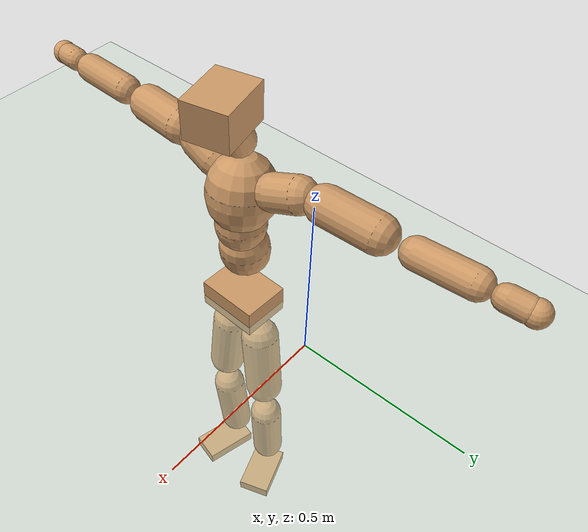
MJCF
<mujoco model="humanoid">
  <compiler coordinate="local" angle="radian"/>
  <default>
    <joint damping="0.0" armature="0.01" stiffness="0.0" limited="true"/>
    <geom conaffinity="1" condim="3" contype="7" margin="0.001" rgba="0.8 0.6 .4 1"/>
  </default>
  <asset>
    <texture type="skybox" builtin="gradient" rgb1=".4 .5 .6" rgb2="0 0 0" width="100" height="100"/>
    <texture builtin="flat" height="1278" mark="cross" markrgb="1 1 1" name="texgeom" random="0.01" rgb1="0.8 0.6 0.4" rgb2="0.8 0.6 0.4" type="cube" width="127"/>
    <texture builtin="checker" height="100" name="texplane" rgb1="0 0 0" rgb2="0.8 0.8 0.8" type="2d" width="100"/>
    <material name="MatPlane" reflectance="0.5" shininess="1" specular="1" texrepeat="60 60" texture="texplane"/>
    <material name="geom" texture="texgeom" texuniform="true"/>
  </asset>
  <worldbody>
    <light cutoff="100" diffuse="1 1 1" dir="-0 0 -1.3" directional="true" exponent="1" pos="0 0 1.3" specular=".1 .1 .1"/>
    <geom conaffinity="1" condim="3" name="floor" pos="0 0 0" rgba="0.8 0.9 0.8 1" size="100 100 .2" type="plane" material="MatPlane"/>
    <body name="Pelvis" pos="-0.007 -0.2418 0.016">
      <freejoint name="Pelvis"/>
      <geom type="box" contype="1" conaffinity="1" density="500" pos="-0.0114 0.0004 -0.0079" size="0.0689 0.0899 0.0419" quat="0.9998 0.0000 0.0000 -0.0179" name="Pelvis"/>
      <body name="L_Hip" pos="-0.0219 0.0478 -0.0777">
        <joint name="L_Hip_x" type="hinge" pos="0 0 0" axis="1 0 0" stiffness="800" damping="80" armature="0.02" range="-180.0000 180.0000"/>
        <joint name="L_Hip_y" type="hinge" pos="0 0 0" axis="0 1 0" stiffness="800" damping="80" armature="0.02" range="-180.0000 180.0000"/>
        <joint name="L_Hip_z" type="hinge" pos="0 0 0" axis="0 0 1" stiffness="800" damping="80" armature="0.02" range="-180.0000 180.0000"/>
        <geom type="capsule" contype="1" conaffinity="1" density="500" fromto="0.0032 0.0085 -0.0731 0.0128 0.0342 -0.2925" size="0.0559" name="L_Hip"/>
        <body name="L_Knee" pos="0.016 0.0427 -0.3657">
          <joint name="L_Knee_x" type="hinge" pos="0 0 0" axis="1 0 0" stiffness="800" damping="80" armature="0.02" range="-180.0000 180.0000"/>
          <joint name="L_Knee_y" type="hinge" pos="0 0 0" axis="0 1 0" stiffness="800" damping="80" armature="0.02" range="-180.0000 180.0000"/>
          <joint name="L_Knee_z" type="hinge" pos="0 0 0" axis="0 0 1" stiffness="800" damping="80" armature="0.02" range="-180.0000 180.0000"/>
          <geom type="capsule" contype="1" conaffinity="1" density="500" fromto="-0.0063 -0.0024 -0.0774 -0.0254 -0.0094 -0.3094" size="0.0495" name="L_Knee"/>
          <body name="L_Ankle" pos="-0.0317 -0.0118 -0.3868">
            <joint name="L_Ankle_x" type="hinge" pos="0 0 0" axis="1 0 0" stiffness="800" damping="80" armature="0.02" range="-180.0000 180.0000"/>
            <joint name="L_Ankle_y" type="hinge" pos="0 0 0" axis="0 1 0" stiffness="800" damping="80" armature="0.02" range="-180.0000 180.0000"/>
            <joint name="L_Ankle_z" type="hinge" pos="0 0 0" axis="0 0 1" stiffness="800" damping="80" armature="0.02" range="-180.0000 180.0000"/>
            <geom type="box" contype="1" conaffinity="1" density="500" pos="0.0568 0.0204 -0.0282" size="0.0825 0.0497 0.0192" quat="0.9852 0.0000 0.0000 0.1711" name="L_Ankle"/>
            <body name="L_Toe" pos="0.1137 0.0407 -0.0563">
              <joint name="L_Toe_x" type="hinge" pos="0 0 0" axis="1 0 0" stiffness="500" damping="50" armature="0.02" range="-180.0000 180.0000"/>
              <joint name="L_Toe_y" type="hinge" pos="0 0 0" axis="0 1 0" stiffness="500" damping="50" armature="0.02" range="-180.0000 180.0000"/>
              <joint name="L_Toe_z" type="hinge" pos="0 0 0" axis="0 0 1" stiffness="500" damping="50" armature="0.02" range="-180.0000 180.0000"/>
              <geom type="box" contype="1" conaffinity="1" density="500" pos="0.0000 0.0000 0.0286" size="0.001 0.0025 0.001" quat="0.9844 0.0000 0.0000 0.1760" name="L_Toe"/>
            </body>
          </body>
        </body>
      </body>
      <body name="R_Hip" pos="-0.0183 -0.0491 -0.0856">
        <joint name="R_Hip_x" type="hinge" pos="0 0 0" axis="1 0 0" stiffness="800" damping="80" armature="0.02" range="-180.0000 180.0000"/>
        <joint name="R_Hip_y" type="hinge" pos="0 0 0" axis="0 1 0" stiffness="800" damping="80" armature="0.02" range="-180.0000 180.0000"/>
        <joint name="R_Hip_z" type="hinge" pos="0 0 0" axis="0 0 1" stiffness="800" damping="80" armature="0.02" range="-180.0000 180.0000"/>
        <geom type="capsule" contype="1" conaffinity="1" density="500" fromto="0.0005 -0.0079 -0.0718 0.0020 -0.0316 -0.2872" size="0.055" name="R_Hip"/>
        <body name="R_Knee" pos="0.0025 -0.0395 -0.359">
          <joint name="R_Knee_x" type="hinge" pos="0 0 0" axis="1 0 0" stiffness="800" damping="80" armature="0.02" range="-180.0000 180.0000"/>
          <joint name="R_Knee_y" type="hinge" pos="0 0 0" axis="0 1 0" stiffness="800" damping="80" armature="0.02" range="-180.0000 180.0000"/>
          <joint name="R_Knee_z" type="hinge" pos="0 0 0" axis="0 0 1" stiffness="800" damping="80" armature="0.02" range="-180.0000 180.0000"/>
          <geom type="capsule" contype="1" conaffinity="1" density="500" fromto="-0.0059 0.0034 -0.0759 -0.0237 0.0138 -0.3035" size="0.0499" name="R_Knee"/>
          <body name="R_Ankle" pos="-0.0296 0.0172 -0.3794">
            <joint name="R_Ankle_x" type="hinge" pos="0 0 0" axis="1 0 0" stiffness="800" damping="80" armature="0.02" range="-180.0000 180.0000"/>
            <joint name="R_Ankle_y" type="hinge" pos="0 0 0" axis="0 1 0" stiffness="800" damping="80" armature="0.02" range="-180.0000 180.0000"/>
            <joint name="R_Ankle_z" type="hinge" pos="0 0 0" axis="0 0 1" stiffness="800" damping="80" armature="0.02" range="-180.0000 180.0000"/>
            <geom type="box" contype="1" conaffinity="1" density="500" pos="0.0612 -0.0150 -0.0282" size="0.0852 0.0471 0.0196" quat="0.9928 0.0000 0.0000 -0.1200" name="R_Ankle"/>
            <body name="R_Toe" pos="0.1225 -0.0301 -0.0564">
              <joint name="R_Toe_x" type="hinge" pos="0 0 0" axis="1 0 0" stiffness="500" damping="50" armature="0.02" range="-180.0000 180.0000"/>
              <joint name="R_Toe_y" type="hinge" pos="0 0 0" axis="0 1 0" stiffness="500" damping="50" armature="0.02" range="-180.0000 180.0000"/>
              <joint name="R_Toe_z" type="hinge" pos="0 0 0" axis="0 0 1" stiffness="500" damping="50" armature="0.02" range="-180.0000 180.0000"/>
              <geom type="box" contype="1" conaffinity="1" density="500" pos="0.0000 0.0000 0.0299" size="0.0009 0.0023 0.0011" quat="0.9939 0.0000 0.0000 -0.1106" name="R_Toe"/>
            </body>
          </body>
        </body>
      </body>
      <body name="Torso" pos="-0.0283 0.0038 0.116">
        <joint name="Torso_x" type="hinge" pos="0 0 0" axis="1 0 0" stiffness="1000" damping="100" armature="0.02" range="-180.0000 180.0000"/>
        <joint name="Torso_y" type="hinge" pos="0 0 0" axis="0 1 0" stiffness="1000" damping="100" armature="0.02" range="-180.0000 180.0000"/>
        <joint name="Torso_z" type="hinge" pos="0 0 0" axis="0 0 1" stiffness="1000" damping="100" armature="0.02" range="-180.0000 180.0000"/>
        <geom type="capsule" contype="1" conaffinity="1" density="500" fromto="0.0167 0.0036 0.0867 0.0111 0.0024 0.0578" size="0.069" name="Torso"/>
        <body name="Spine" pos="0.0278 0.006 0.1444">
          <joint name="Spine_x" type="hinge" pos="0 0 0" axis="1 0 0" stiffness="1000" damping="100" armature="0.02" range="-180.0000 180.0000"/>
          <joint name="Spine_y" type="hinge" pos="0 0 0" axis="0 1 0" stiffness="1000" damping="100" armature="0.02" range="-180.0000 180.0000"/>
          <joint name="Spine_z" type="hinge" pos="0 0 0" axis="0 0 1" stiffness="1000" damping="100" armature="0.02" range="-180.0000 180.0000"/>
          <geom type="capsule" contype="1" conaffinity="1" density="500" fromto="0.0012 -0.0001 0.0350 0.0008 -0.0000 0.0233" size="0.0691" name="Spine"/>
          <body name="Chest" pos="0.002 -0.0001 0.0583">
            <joint name="Chest_x" type="hinge" pos="0 0 0" axis="1 0 0" stiffness="1000" damping="100" armature="0.02" range="-180.0000 180.0000"/>
            <joint name="Chest_y" type="hinge" pos="0 0 0" axis="0 1 0" stiffness="1000" damping="100" armature="0.02" range="-180.0000 180.0000"/>
            <joint name="Chest_z" type="hinge" pos="0 0 0" axis="0 0 1" stiffness="1000" damping="100" armature="0.02" range="-180.0000 180.0000"/>
            <geom type="capsule" contype="1" conaffinity="1" density="500" fromto="-0.0123 -0.0051 0.0813 -0.0082 -0.0034 0.0542" size="0.0922" name="Chest"/>
            <body name="Neck" pos="-0.0242 -0.0147 0.1989">
              <joint name="Neck_x" type="hinge" pos="0 0 0" axis="1 0 0" stiffness="500" damping="50" armature="0.02" range="-180.0000 180.0000"/>
              <joint name="Neck_y" type="hinge" pos="0 0 0" axis="0 1 0" stiffness="500" damping="50" armature="0.02" range="-180.0000 180.0000"/>
              <joint name="Neck_z" type="hinge" pos="0 0 0" axis="0 0 1" stiffness="500" damping="50" armature="0.02" range="-180.0000 180.0000"/>
              <geom type="capsule" contype="1" conaffinity="1" density="500" fromto="0.0097 0.0019 0.0188 0.0390 0.0077 0.0750" size="0.0429" name="Neck"/>
              <body name="Head" pos="0.0487 0.0096 0.0938">
                <joint name="Head_x" type="hinge" pos="0 0 0" axis="1 0 0" stiffness="500" damping="50" armature="0.02" range="-180.0000 180.0000"/>
                <joint name="Head_y" type="hinge" pos="0 0 0" axis="0 1 0" stiffness="500" damping="50" armature="0.02" range="-180.0000 180.0000"/>
                <joint name="Head_z" type="hinge" pos="0 0 0" axis="0 0 1" stiffness="500" damping="50" armature="0.02" range="-180.0000 180.0000"/>
                <geom type="box" contype="1" conaffinity="1" density="500" pos="0.0254 0.0058 0.0479" size="0.0762 0.0607 0.0514" quat="0.9937 0.0000 0.0000 0.1122" name="Head"/>
              </body>
            </body>
            <body name="L_Thorax" pos="-0.0154 0.0672 0.1051">
              <joint name="L_Thorax_x" type="hinge" pos="0 0 0" axis="1 0 0" stiffness="500" damping="50" armature="0.02" range="-180.0000 180.0000"/>
              <joint name="L_Thorax_y" type="hinge" pos="0 0 0" axis="0 1 0" stiffness="500" damping="50" armature="0.02" range="-180.0000 180.0000"/>
              <joint name="L_Thorax_z" type="hinge" pos="0 0 0" axis="0 0 1" stiffness="500" damping="50" armature="0.02" range="-180.0000 180.0000"/>
              <geom type="capsule" contype="1" conaffinity="1" density="500" fromto="-0.0032 0.0236 0.0087 -0.0128 0.0946 0.0348" size="0.0492" name="L_Thorax"/>
              <body name="L_Shoulder" pos="-0.016 0.1182 0.0435">
                <joint name="L_Shoulder_x" type="hinge" pos="0 0 0" axis="1 0 0" stiffness="500" damping="50" armature="0.02" range="-720.0000 720.0000"/>
                <joint name="L_Shoulder_y" type="hinge" pos="0 0 0" axis="0 1 0" stiffness="500" damping="50" armature="0.02" range="-720.0000 720.0000"/>
                <joint name="L_Shoulder_z" type="hinge" pos="0 0 0" axis="0 0 1" stiffness="500" damping="50" armature="0.02" range="-720.0000 720.0000"/>
                <geom type="capsule" contype="1" conaffinity="1" density="500" fromto="-0.0040 0.0469 -0.0029 -0.0160 0.1878 -0.0117" size="0.0508" name="L_Shoulder"/>
                <body name="L_Elbow" pos="-0.02 0.2347 -0.0147">
                  <joint name="L_Elbow_x" type="hinge" pos="0 0 0" axis="1 0 0" stiffness="500" damping="50" armature="0.02" range="-720.0000 720.0000"/>
                  <joint name="L_Elbow_y" type="hinge" pos="0 0 0" axis="0 1 0" stiffness="500" damping="50" armature="0.02" range="-720.0000 720.0000"/>
                  <joint name="L_Elbow_z" type="hinge" pos="0 0 0" axis="0 0 1" stiffness="500" damping="50" armature="0.02" range="-720.0000 720.0000"/>
                  <geom type="capsule" contype="1" conaffinity="1" density="500" fromto="-0.0015 0.0488 0.0021 -0.0061 0.1954 0.0085" size="0.0399" name="L_Elbow"/>
                  <body name="L_Wrist" pos="-0.0077 0.2442 0.0107">
                    <joint name="L_Wrist_x" type="hinge" pos="0 0 0" axis="1 0 0" stiffness="300" damping="30" armature="0.02" range="-180.0000 180.0000"/>
                    <joint name="L_Wrist_y" type="hinge" pos="0 0 0" axis="0 1 0" stiffness="300" damping="30" armature="0.02" range="-180.0000 180.0000"/>
                    <joint name="L_Wrist_z" type="hinge" pos="0 0 0" axis="0 0 1" stiffness="300" damping="30" armature="0.02" range="-180.0000 180.0000"/>
                    <geom type="capsule" contype="1" conaffinity="1" density="500" fromto="-0.0029 0.0163 -0.0020 -0.0116 0.0651 -0.0081" size="0.0321" name="L_Wrist"/>
                    <body name="L_Hand" pos="-0.0145 0.0814 -0.0102">
                      <joint name="L_Hand_x" type="hinge" pos="0 0 0" axis="1 0 0" stiffness="300" damping="30" armature="0.02" range="-180.0000 180.0000"/>
                      <joint name="L_Hand_y" type="hinge" pos="0 0 0" axis="0 1 0" stiffness="300" damping="30" armature="0.02" range="-180.0000 180.0000"/>
                      <joint name="L_Hand_z" type="hinge" pos="0 0 0" axis="0 0 1" stiffness="300" damping="30" armature="0.02" range="-180.0000 180.0000"/>
                      <geom type="sphere" contype="1" conaffinity="1" density="500" size="0.0335" pos="0.0000 0.0000 0.0000" name="L_Hand"/>
                    </body>
                  </body>
                </body>
              </body>
            </body>
            <body name="R_Thorax" pos="-0.022 -0.078 0.1024">
              <joint name="R_Thorax_x" type="hinge" pos="0 0 0" axis="1 0 0" stiffness="500" damping="50" armature="0.02" range="-180.0000 180.0000"/>
              <joint name="R_Thorax_y" type="hinge" pos="0 0 0" axis="0 1 0" stiffness="500" damping="50" armature="0.02" range="-180.0000 180.0000"/>
              <joint name="R_Thorax_z" type="hinge" pos="0 0 0" axis="0 0 1" stiffness="500" damping="50" armature="0.02" range="-180.0000 180.0000"/>
              <geom type="capsule" contype="1" conaffinity="1" density="500" fromto="-0.0014 -0.0212 0.0086 -0.0055 -0.0849 0.0346" size="0.0486" name="R_Thorax"/>
              <body name="R_Shoulder" pos="-0.0069 -0.1061 0.0432">
                <joint name="R_Shoulder_x" type="hinge" pos="0 0 0" axis="1 0 0" stiffness="500" damping="50" armature="0.02" range="-720.0000 720.0000"/>
                <joint name="R_Shoulder_y" type="hinge" pos="0 0 0" axis="0 1 0" stiffness="500" damping="50" armature="0.02" range="-720.0000 720.0000"/>
                <joint name="R_Shoulder_z" type="hinge" pos="0 0 0" axis="0 0 1" stiffness="500" damping="50" armature="0.02" range="-720.0000 720.0000"/>
                <geom type="capsule" contype="1" conaffinity="1" density="500" fromto="-0.0056 -0.0467 -0.0026 -0.0223 -0.1867 -0.0104" size="0.0507" name="R_Shoulder"/>
                <body name="R_Elbow" pos="-0.0279 -0.2333 -0.0129">
                  <joint name="R_Elbow_x" type="hinge" pos="0 0 0" axis="1 0 0" stiffness="500" damping="50" armature="0.02" range="-720.0000 720.0000"/>
                  <joint name="R_Elbow_y" type="hinge" pos="0 0 0" axis="0 1 0" stiffness="500" damping="50" armature="0.02" range="-720.0000 720.0000"/>
                  <joint name="R_Elbow_z" type="hinge" pos="0 0 0" axis="0 0 1" stiffness="500" damping="50" armature="0.02" range="-720.0000 720.0000"/>
                  <geom type="capsule" contype="1" conaffinity="1" density="500" fromto="-0.0008 -0.0488 0.0009 -0.0032 -0.1952 0.0037" size="0.0396" name="R_Elbow"/>
                  <body name="R_Wrist" pos="-0.004 -0.244 0.0046">
                    <joint name="R_Wrist_x" type="hinge" pos="0 0 0" axis="1 0 0" stiffness="300" damping="30" armature="0.02" range="-180.0000 180.0000"/>
                    <joint name="R_Wrist_y" type="hinge" pos="0 0 0" axis="0 1 0" stiffness="300" damping="30" armature="0.02" range="-180.0000 180.0000"/>
                    <joint name="R_Wrist_z" type="hinge" pos="0 0 0" axis="0 0 1" stiffness="300" damping="30" armature="0.02" range="-180.0000 180.0000"/>
                    <geom type="capsule" contype="1" conaffinity="1" density="500" fromto="-0.0019 -0.0161 -0.0016 -0.0075 -0.0645 -0.0062" size="0.0315" name="R_Wrist"/>
                    <body name="R_Hand" pos="-0.0094 -0.0807 -0.0078">
                      <joint name="R_Hand_x" type="hinge" pos="0 0 0" axis="1 0 0" stiffness="300" damping="30" armature="0.02" range="-180.0000 180.0000"/>
                      <joint name="R_Hand_y" type="hinge" pos="0 0 0" axis="0 1 0" stiffness="300" damping="30" armature="0.02" range="-180.0000 180.0000"/>
                      <joint name="R_Hand_z" type="hinge" pos="0 0 0" axis="0 0 1" stiffness="300" damping="30" armature="0.02" range="-180.0000 180.0000"/>
                      <geom type="sphere" contype="1" conaffinity="1" density="500" size="0.0328" pos="0.0000 0.0000 0.0000" name="R_Hand"/>
                    </body>
                  </body>
                </body>
              </body>
            </body>
          </body>
        </body>
      </body>
    </body>
  </worldbody>
  <actuator>
    <motor name="L_Hip_x" joint="L_Hip_x" gear="500"/>
    <motor name="L_Hip_y" joint="L_Hip_y" gear="500"/>
    <motor name="L_Hip_z" joint="L_Hip_z" gear="500"/>
    <motor name="L_Knee_x" joint="L_Knee_x" gear="500"/>
    <motor name="L_Knee_y" joint="L_Knee_y" gear="500"/>
    <motor name="L_Knee_z" joint="L_Knee_z" gear="500"/>
    <motor name="L_Ankle_x" joint="L_Ankle_x" gear="500"/>
    <motor name="L_Ankle_y" joint="L_Ankle_y" gear="500"/>
    <motor name="L_Ankle_z" joint="L_Ankle_z" gear="500"/>
    <motor name="L_Toe_x" joint="L_Toe_x" gear="500"/>
    <motor name="L_Toe_y" joint="L_Toe_y" gear="500"/>
    <motor name="L_Toe_z" joint="L_Toe_z" gear="500"/>
    <motor name="R_Hip_x" joint="R_Hip_x" gear="500"/>
    <motor name="R_Hip_y" joint="R_Hip_y" gear="500"/>
    <motor name="R_Hip_z" joint="R_Hip_z" gear="500"/>
    <motor name="R_Knee_x" joint="R_Knee_x" gear="500"/>
    <motor name="R_Knee_y" joint="R_Knee_y" gear="500"/>
    <motor name="R_Knee_z" joint="R_Knee_z" gear="500"/>
    <motor name="R_Ankle_x" joint="R_Ankle_x" gear="500"/>
    <motor name="R_Ankle_y" joint="R_Ankle_y" gear="500"/>
    <motor name="R_Ankle_z" joint="R_Ankle_z" gear="500"/>
    <motor name="R_Toe_x" joint="R_Toe_x" gear="500"/>
    <motor name="R_Toe_y" joint="R_Toe_y" gear="500"/>
    <motor name="R_Toe_z" joint="R_Toe_z" gear="500"/>
    <motor name="Torso_x" joint="Torso_x" gear="500"/>
    <motor name="Torso_y" joint="Torso_y" gear="500"/>
    <motor name="Torso_z" joint="Torso_z" gear="500"/>
    <motor name="Spine_x" joint="Spine_x" gear="500"/>
    <motor name="Spine_y" joint="Spine_y" gear="500"/>
    <motor name="Spine_z" joint="Spine_z" gear="500"/>
    <motor name="Chest_x" joint="Chest_x" gear="500"/>
    <motor name="Chest_y" joint="Chest_y" gear="500"/>
    <motor name="Chest_z" joint="Chest_z" gear="500"/>
    <motor name="Neck_x" joint="Neck_x" gear="500"/>
    <motor name="Neck_y" joint="Neck_y" gear="500"/>
    <motor name="Neck_z" joint="Neck_z" gear="500"/>
    <motor name="Head_x" joint="Head_x" gear="500"/>
    <motor name="Head_y" joint="Head_y" gear="500"/>
    <motor name="Head_z" joint="Head_z" gear="500"/>
    <motor name="L_Thorax_x" joint="L_Thorax_x" gear="500"/>
    <motor name="L_Thorax_y" joint="L_Thorax_y" gear="500"/>
    <motor name="L_Thorax_z" joint="L_Thorax_z" gear="500"/>
    <motor name="L_Shoulder_x" joint="L_Shoulder_x" gear="500"/>
    <motor name="L_Shoulder_y" joint="L_Shoulder_y" gear="500"/>
    <motor name="L_Shoulder_z" joint="L_Shoulder_z" gear="500"/>
    <motor name="L_Elbow_x" joint="L_Elbow_x" gear="500"/>
    <motor name="L_Elbow_y" joint="L_Elbow_y" gear="500"/>
    <motor name="L_Elbow_z" joint="L_Elbow_z" gear="500"/>
    <motor name="L_Wrist_x" joint="L_Wrist_x" gear="500"/>
    <motor name="L_Wrist_y" joint="L_Wrist_y" gear="500"/>
    <motor name="L_Wrist_z" joint="L_Wrist_z" gear="500"/>
    <motor name="L_Hand_x" joint="L_Hand_x" gear="500"/>
    <motor name="L_Hand_y" joint="L_Hand_y" gear="500"/>
    <motor name="L_Hand_z" joint="L_Hand_z" gear="500"/>
    <motor name="R_Thorax_x" joint="R_Thorax_x" gear="500"/>
    <motor name="R_Thorax_y" joint="R_Thorax_y" gear="500"/>
    <motor name="R_Thorax_z" joint="R_Thorax_z" gear="500"/>
    <motor name="R_Shoulder_x" joint="R_Shoulder_x" gear="500"/>
    <motor name="R_Shoulder_y" joint="R_Shoulder_y" gear="500"/>
    <motor name="R_Shoulder_z" joint="R_Shoulder_z" gear="500"/>
    <motor name="R_Elbow_x" joint="R_Elbow_x" gear="500"/>
    <motor name="R_Elbow_y" joint="R_Elbow_y" gear="500"/>
    <motor name="R_Elbow_z" joint="R_Elbow_z" gear="500"/>
    <motor name="R_Wrist_x" joint="R_Wrist_x" gear="500"/>
    <motor name="R_Wrist_y" joint="R_Wrist_y" gear="500"/>
    <motor name="R_Wrist_z" joint="R_Wrist_z" gear="500"/>
    <motor name="R_Hand_x" joint="R_Hand_x" gear="500"/>
    <motor name="R_Hand_y" joint="R_Hand_y" gear="500"/>
    <motor name="R_Hand_z" joint="R_Hand_z" gear="500"/>
  </actuator>
  <contact>
    <exclude body1="Torso" body2="Chest"/>
    <exclude body1="Head" body2="Chest"/>
    <exclude body1="R_Knee" body2="R_Toe"/>
    <exclude body1="R_Knee" body2="L_Ankle"/>
    <exclude body1="R_Knee" body2="L_Toe"/>
    <exclude body1="L_Knee" body2="L_Toe"/>
    <exclude body1="L_Knee" body2="R_Ankle"/>
    <exclude body1="L_Knee" body2="R_Toe"/>
    <exclude body1="L_Shoulder" body2="Chest"/>
    <exclude body1="R_Shoulder" body2="Chest"/>
  </contact>
  <sensor/>
  <size njmax="700" nconmax="700"/>
</mujoco>
